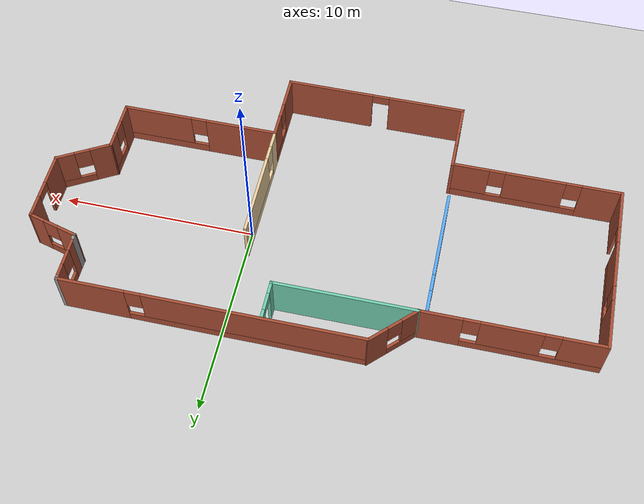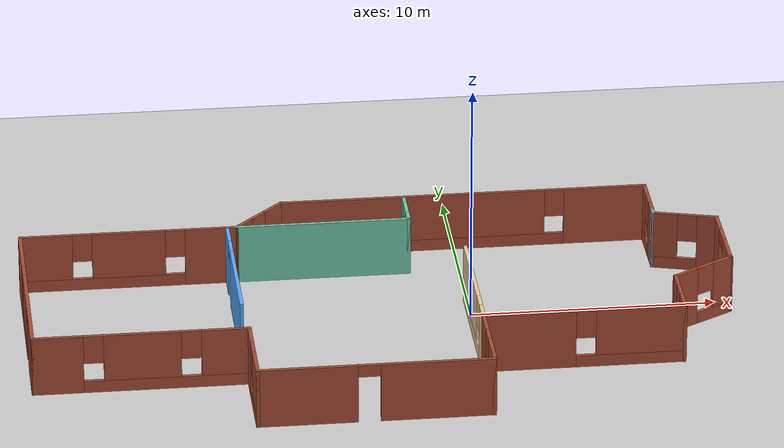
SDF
<sdf version="1.6">
 <world name="default">
  <model name="ground_plane">
   <static>1</static>
   <link name="link">
    <collision name="collision">
     <geometry><plane><normal>0 0 1</normal><size>100 100</size></plane></geometry>
     <surface><friction><ode><mu>100</mu><mu2>50</mu2></ode></friction></surface>
    </collision>
    <visual name="visual">
     <cast_shadows>0</cast_shadows>
     <geometry><plane><normal>0 0 1</normal><size>100 100</size></plane></geometry>
     <material>
      <script><uri>file://media/materials/scripts/gazebo.material</uri><name>Gazebo/Grey</name></script>
     </material>
    </visual>
   </link>
  </model>
  <model name="brickhouse">
   <pose>-3.77713 -1.2088 0 0 -0 0</pose>
   <link name="Wall_1">
    <pose>-4.41518 6.20947 0 0 0 -2.35619</pose>
    <visual name="Wall_1_Visual_0">
     <pose>-0.913281 0 1.25 0 -0 0</pose>
     <geometry><box><size>1.17344 0.15 2.5</size></box></geometry>
     <material>
      <script><uri>file://media/materials/scripts/gazebo.material</uri><name>Gazebo/Bricks</name></script>
      <ambient>1 1 1 1</ambient>
     </material>
     <meta><layer>0</layer></meta>
    </visual>
    <collision name="Wall_1_Collision_0">
     <geometry><box><size>1.17344 0.15 2.5</size></box></geometry>
     <pose>-0.913281 0 1.25 0 -0 0</pose>
    </collision>
    <visual name="Wall_1_Visual_1">
     <pose>0.586719 0 0.25 0 -0 0</pose>
     <geometry><box><size>1.82656 0.15 0.5</size></box></geometry>
     <material>
      <script><uri>file://media/materials/scripts/gazebo.material</uri><name>Gazebo/Bricks</name></script>
      <ambient>1 1 1 1</ambient>
     </material>
     <meta><layer>0</layer></meta>
    </visual>
    <collision name="Wall_1_Collision_1">
     <geometry><box><size>1.82656 0.15 0.5</size></box></geometry>
     <pose>0.586719 0 0.25 0 -0 0</pose>
    </collision>
    <visual name="Wall_1_Visual_2">
     <pose>0.986719 0 1.5 0 -0 0</pose>
     <geometry><box><size>1.02656 0.15 2</size></box></geometry>
     <material>
      <script><uri>file://media/materials/scripts/gazebo.material</uri><name>Gazebo/Bricks</name></script>
      <ambient>1 1 1 1</ambient>
     </material>
     <meta><layer>0</layer></meta>
    </visual>
    <collision name="Wall_1_Collision_2">
     <geometry><box><size>1.02656 0.15 2</size></box></geometry>
     <pose>0.986719 0 1.5 0 -0 0</pose>
    </collision>
    <visual name="Wall_1_Visual_3">
     <pose>0.073438 0 1.9 0 -0 0</pose>
     <geometry><box><size>0.8 0.15 1.2</size></box></geometry>
     <material>
      <script><uri>file://media/materials/scripts/gazebo.material</uri><name>Gazebo/Bricks</name></script>
      <ambient>1 1 1 1</ambient>
     </material>
     <meta><layer>0</layer></meta>
    </visual>
    <collision name="Wall_1_Collision_3">
     <geometry><box><size>0.8 0.15 1.2</size></box></geometry>
     <pose>0.073438 0 1.9 0 -0 0</pose>
    </collision>
   </link>
   <link name="Wall_10">
    <pose>13.0113 -0.33566 0 0 -0 0.523599</pose>
    <visual name="Wall_10_Visual_0">
     <pose>-0.906095 0 1.25 0 -0 0</pose>
     <geometry><box><size>1.18781 0.15 2.5</size></box></geometry>
     <material>
      <script><uri>file://media/materials/scripts/gazebo.material</uri><name>Gazebo/Bricks</name></script>
      <ambient>1 1 1 1</ambient>
     </material>
     <meta><layer>0</layer></meta>
    </visual>
    <collision name="Wall_10_Collision_0">
     <geometry><box><size>1.18781 0.15 2.5</size></box></geometry>
     <pose>-0.906095 0 1.25 0 -0 0</pose>
    </collision>
    <visual name="Wall_10_Visual_1">
     <pose>0.593905 0 0.25 0 -0 0</pose>
     <geometry><box><size>1.81219 0.15 0.5</size></box></geometry>
     <material>
      <script><uri>file://media/materials/scripts/gazebo.material</uri><name>Gazebo/Bricks</name></script>
      <ambient>1 1 1 1</ambient>
     </material>
     <meta><layer>0</layer></meta>
    </visual>
    <collision name="Wall_10_Collision_1">
     <geometry><box><size>1.81219 0.15 0.5</size></box></geometry>
     <pose>0.593905 0 0.25 0 -0 0</pose>
    </collision>
    <visual name="Wall_10_Visual_2">
     <pose>0.993905 0 1.5 0 -0 0</pose>
     <geometry><box><size>1.01219 0.15 2</size></box></geometry>
     <material>
      <script><uri>file://media/materials/scripts/gazebo.material</uri><name>Gazebo/Bricks</name></script>
      <ambient>1 1 1 1</ambient>
     </material>
     <meta><layer>0</layer></meta>
    </visual>
    <collision name="Wall_10_Collision_2">
     <geometry><box><size>1.01219 0.15 2</size></box></geometry>
     <pose>0.993905 0 1.5 0 -0 0</pose>
    </collision>
    <visual name="Wall_10_Visual_3">
     <pose>0.087809 0 1.9 0 -0 0</pose>
     <geometry><box><size>0.8 0.15 1.2</size></box></geometry>
     <material>
      <script><uri>file://media/materials/scripts/gazebo.material</uri><name>Gazebo/Bricks</name></script>
      <ambient>1 1 1 1</ambient>
     </material>
     <meta><layer>0</layer></meta>
    </visual>
    <collision name="Wall_10_Collision_3">
     <geometry><box><size>0.8 0.15 1.2</size></box></geometry>
     <pose>0.087809 0 1.9 0 -0 0</pose>
    </collision>
   </link>
   <link name="Wall_11">
    <pose>14.2454 2.17684 0 0 -0 1.5708</pose>
    <visual name="Wall_11_Visual_0">
     <pose>-1.04258 0 1.25 0 -0 0</pose>
     <geometry><box><size>1.66484 0.15 2.5</size></box></geometry>
     <material>
      <script><uri>file://media/materials/scripts/gazebo.material</uri><name>Gazebo/Bricks</name></script>
      <ambient>1 1 1 1</ambient>
     </material>
     <meta><layer>0</layer></meta>
    </visual>
    <collision name="Wall_11_Collision_0">
     <geometry><box><size>1.66484 0.15 2.5</size></box></geometry>
     <pose>-1.04258 0 1.25 0 -0 0</pose>
    </collision>
    <visual name="Wall_11_Visual_1">
     <pose>1.28242 0 1.25 0 -0 0</pose>
     <geometry><box><size>1.18516 0.15 2.5</size></box></geometry>
     <material>
      <script><uri>file://media/materials/scripts/gazebo.material</uri><name>Gazebo/Bricks</name></script>
      <ambient>1 1 1 1</ambient>
     </material>
     <meta><layer>0</layer></meta>
    </visual>
    <collision name="Wall_11_Collision_1">
     <geometry><box><size>1.18516 0.15 2.5</size></box></geometry>
     <pose>1.28242 0 1.25 0 -0 0</pose>
    </collision>
    <visual name="Wall_11_Visual_2">
     <pose>0.239836 0 2.25 0 -0 0</pose>
     <geometry><box><size>0.9 0.15 0.5</size></box></geometry>
     <material>
      <script><uri>file://media/materials/scripts/gazebo.material</uri><name>Gazebo/Bricks</name></script>
      <ambient>1 1 1 1</ambient>
     </material>
     <meta><layer>0</layer></meta>
    </visual>
    <collision name="Wall_11_Collision_2">
     <geometry><box><size>0.9 0.15 0.5</size></box></geometry>
     <pose>0.239836 0 2.25 0 -0 0</pose>
    </collision>
   </link>
   <link name="Wall_12">
    <pose>12.9897 4.3133 0 0 -0 2.87979</pose>
    <visual name="Wall_12_Visual_0">
     <pose>-0.936482 0 1.25 0 -0 0</pose>
     <geometry><box><size>0.877036 0.15 2.5</size></box></geometry>
     <material>
      <script><uri>file://media/materials/scripts/gazebo.material</uri><name>Gazebo/Bricks</name></script>
      <ambient>1 1 1 1</ambient>
     </material>
     <meta><layer>0</layer></meta>
    </visual>
    <collision name="Wall_12_Collision_0">
     <geometry><box><size>0.877036 0.15 2.5</size></box></geometry>
     <pose>-0.936482 0 1.25 0 -0 0</pose>
    </collision>
    <visual name="Wall_12_Visual_1">
     <pose>0.438518 0 0.25 0 -0 0</pose>
     <geometry><box><size>1.87296 0.15 0.5</size></box></geometry>
     <material>
      <script><uri>file://media/materials/scripts/gazebo.material</uri><name>Gazebo/Bricks</name></script>
      <ambient>1 1 1 1</ambient>
     </material>
     <meta><layer>0</layer></meta>
    </visual>
    <collision name="Wall_12_Collision_1">
     <geometry><box><size>1.87296 0.15 0.5</size></box></geometry>
     <pose>0.438518 0 0.25 0 -0 0</pose>
    </collision>
    <visual name="Wall_12_Visual_2">
     <pose>0.838518 0 1.5 0 -0 0</pose>
     <geometry><box><size>1.07296 0.15 2</size></box></geometry>
     <material>
      <script><uri>file://media/materials/scripts/gazebo.material</uri><name>Gazebo/Bricks</name></script>
      <ambient>1 1 1 1</ambient>
     </material>
     <meta><layer>0</layer></meta>
    </visual>
    <collision name="Wall_12_Collision_2">
     <geometry><box><size>1.07296 0.15 2</size></box></geometry>
     <pose>0.838518 0 1.5 0 -0 0</pose>
    </collision>
    <visual name="Wall_12_Visual_3">
     <pose>-0.097964 0 1.9 0 -0 0</pose>
     <geometry><box><size>0.8 0.15 1.2</size></box></geometry>
     <material>
      <script><uri>file://media/materials/scripts/gazebo.material</uri><name>Gazebo/Bricks</name></script>
      <ambient>1 1 1 1</ambient>
     </material>
     <meta><layer>0</layer></meta>
    </visual>
    <collision name="Wall_12_Collision_3">
     <geometry><box><size>0.8 0.15 1.2</size></box></geometry>
     <pose>-0.097964 0 1.9 0 -0 0</pose>
    </collision>
   </link>
   <link name="Wall_13">
    <collision name="Wall_13_Collision">
     <geometry><box><size>0.5 0.15 2.5</size></box></geometry>
     <pose>0 0 1.25 0 -0 0</pose>
    </collision>
    <visual name="Wall_13_Visual">
     <pose>0 0 1.25 0 -0 0</pose>
     <geometry><box><size>0.5 0.15 2.5</size></box></geometry>
     <material>
      <script><uri>file://media/materials/scripts/gazebo.material</uri><name>Gazebo/Grey</name></script>
      <ambient>1 1 1 1</ambient>
     </material>
     <meta><layer>0</layer></meta>
    </visual>
    <pose>11.734 4.82477 0 0 -0 1.5708</pose>
   </link>
   <link name="Wall_14">
    <pose>11.734 6.04977 0 0 -0 1.5708</pose>
    <visual name="Wall_14_Visual_0">
     <pose>-0.797565 0 1.25 0 -0 0</pose>
     <geometry><box><size>0.65487 0.15 2.5</size></box></geometry>
     <material>
      <script><uri>file://media/materials/scripts/gazebo.material</uri><name>Gazebo/Bricks</name></script>
      <ambient>1 1 1 1</ambient>
     </material>
     <meta><layer>0</layer></meta>
    </visual>
    <collision name="Wall_14_Collision_0">
     <geometry><box><size>0.65487 0.15 2.5</size></box></geometry>
     <pose>-0.797565 0 1.25 0 -0 0</pose>
    </collision>
    <visual name="Wall_14_Visual_1">
     <pose>0.327435 0 0.25 0 -0 0</pose>
     <geometry><box><size>1.59513 0.15 0.5</size></box></geometry>
     <material>
      <script><uri>file://media/materials/scripts/gazebo.material</uri><name>Gazebo/Bricks</name></script>
      <ambient>1 1 1 1</ambient>
     </material>
     <meta><layer>0</layer></meta>
    </visual>
    <collision name="Wall_14_Collision_1">
     <geometry><box><size>1.59513 0.15 0.5</size></box></geometry>
     <pose>0.327435 0 0.25 0 -0 0</pose>
    </collision>
    <visual name="Wall_14_Visual_2">
     <pose>0.727435 0 1.5 0 -0 0</pose>
     <geometry><box><size>0.79513 0.15 2</size></box></geometry>
     <material>
      <script><uri>file://media/materials/scripts/gazebo.material</uri><name>Gazebo/Bricks</name></script>
      <ambient>1 1 1 1</ambient>
     </material>
     <meta><layer>0</layer></meta>
    </visual>
    <collision name="Wall_14_Collision_2">
     <geometry><box><size>0.79513 0.15 2</size></box></geometry>
     <pose>0.727435 0 1.5 0 -0 0</pose>
    </collision>
    <visual name="Wall_14_Visual_3">
     <pose>-0.07013 0 1.9 0 -0 0</pose>
     <geometry><box><size>0.8 0.15 1.2</size></box></geometry>
     <material>
      <script><uri>file://media/materials/scripts/gazebo.material</uri><name>Gazebo/Bricks</name></script>
      <ambient>1 1 1 1</ambient>
     </material>
     <meta><layer>0</layer></meta>
    </visual>
    <collision name="Wall_14_Collision_3">
     <geometry><box><size>0.8 0.15 1.2</size></box></geometry>
     <pose>-0.07013 0 1.9 0 -0 0</pose>
    </collision>
   </link>
   <link name="Wall_15">
    <collision name="Wall_15_Collision">
     <geometry><box><size>0.25 0.15 2.5</size></box></geometry>
     <pose>0 0 1.25 0 -0 0</pose>
    </collision>
    <visual name="Wall_15_Visual">
     <pose>0 0 1.25 0 -0 0</pose>
     <geometry><box><size>0.25 0.15 2.5</size></box></geometry>
     <material>
      <script><uri>file://media/materials/scripts/gazebo.material</uri><name>Gazebo/Grey</name></script>
      <ambient>1 1 1 1</ambient>
     </material>
     <meta><layer>0</layer></meta>
    </visual>
    <pose>11.734 7.14977 0 0 -0 1.5708</pose>
   </link>
   <link name="Wall_16">
    <pose>4.18395 7.19977 0 0 -0 3.14159</pose>
    <visual name="Wall_16_Visual_0">
     <pose>-5.89816 0 1.25 0 -0 0</pose>
     <geometry><box><size>3.45369 0.15 2.5</size></box></geometry>
     <material>
      <script><uri>file://media/materials/scripts/gazebo.material</uri><name>Gazebo/Bricks</name></script>
      <ambient>1 1 1 1</ambient>
     </material>
     <meta><layer>0</layer></meta>
    </visual>
    <collision name="Wall_16_Collision_0">
     <geometry><box><size>3.45369 0.15 2.5</size></box></geometry>
     <pose>-5.89816 0 1.25 0 -0 0</pose>
    </collision>
    <visual name="Wall_16_Visual_1">
     <pose>1.72684 0 0.25 0 -0 0</pose>
     <geometry><box><size>11.7963 0.15 0.5</size></box></geometry>
     <material>
      <script><uri>file://media/materials/scripts/gazebo.material</uri><name>Gazebo/Bricks</name></script>
      <ambient>1 1 1 1</ambient>
     </material>
     <meta><layer>0</layer></meta>
    </visual>
    <collision name="Wall_16_Collision_1">
     <geometry><box><size>11.7963 0.15 0.5</size></box></geometry>
     <pose>1.72684 0 0.25 0 -0 0</pose>
    </collision>
    <visual name="Wall_16_Visual_2">
     <pose>2.12684 0 1.5 0 -0 0</pose>
     <geometry><box><size>10.9963 0.15 2</size></box></geometry>
     <material>
      <script><uri>file://media/materials/scripts/gazebo.material</uri><name>Gazebo/Bricks</name></script>
      <ambient>1 1 1 1</ambient>
     </material>
     <meta><layer>0</layer></meta>
    </visual>
    <collision name="Wall_16_Collision_2">
     <geometry><box><size>10.9963 0.15 2</size></box></geometry>
     <pose>2.12684 0 1.5 0 -0 0</pose>
    </collision>
    <visual name="Wall_16_Visual_3">
     <pose>-3.77131 0 1.9 0 -0 0</pose>
     <geometry><box><size>0.8 0.15 1.2</size></box></geometry>
     <material>
      <script><uri>file://media/materials/scripts/gazebo.material</uri><name>Gazebo/Bricks</name></script>
      <ambient>1 1 1 1</ambient>
     </material>
     <meta><layer>0</layer></meta>
    </visual>
    <collision name="Wall_16_Collision_3">
     <geometry><box><size>0.8 0.15 1.2</size></box></geometry>
     <pose>-3.77131 0 1.9 0 -0 0</pose>
    </collision>
   </link>
   <link name="Wall_18">
    <pose>-5.79963 1.75078 0 0 -0 1.5708</pose>
    <visual name="Wall_18_Visual_0">
     <pose>-1.01174 0 1.25 0 -0 0</pose>
     <geometry><box><size>4.72653 0.15 2.5</size></box></geometry>
     <material>
      <script><uri>file://media/materials/scripts/gazebo.material</uri><name>Gazebo/Grey</name></script>
      <ambient>0.333333 0.666667 1 1</ambient>
     </material>
     <meta><layer>0</layer></meta>
    </visual>
    <collision name="Wall_18_Collision_0">
     <geometry><box><size>4.72653 0.15 2.5</size></box></geometry>
     <pose>-1.01174 0 1.25 0 -0 0</pose>
    </collision>
    <visual name="Wall_18_Visual_1">
     <pose>2.81326 0 1.25 0 -0 0</pose>
     <geometry><box><size>1.12347 0.15 2.5</size></box></geometry>
     <material>
      <script><uri>file://media/materials/scripts/gazebo.material</uri><name>Gazebo/Grey</name></script>
      <ambient>0.333333 0.666667 1 1</ambient>
     </material>
     <meta><layer>0</layer></meta>
    </visual>
    <collision name="Wall_18_Collision_1">
     <geometry><box><size>1.12347 0.15 2.5</size></box></geometry>
     <pose>2.81326 0 1.25 0 -0 0</pose>
    </collision>
    <visual name="Wall_18_Visual_2">
     <pose>1.80153 0 2.25 0 -0 0</pose>
     <geometry><box><size>0.9 0.15 0.5</size></box></geometry>
     <material>
      <script><uri>file://media/materials/scripts/gazebo.material</uri><name>Gazebo/Grey</name></script>
      <ambient>0.333333 0.666667 1 1</ambient>
     </material>
     <meta><layer>0</layer></meta>
    </visual>
    <collision name="Wall_18_Collision_2">
     <geometry><box><size>0.9 0.15 0.5</size></box></geometry>
     <pose>1.80153 0 2.25 0 -0 0</pose>
    </collision>
   </link>
   <link name="Wall_2">
    <pose>-9.84781 5.20184 0 0 -0 3.14159</pose>
    <visual name="Wall_2_Visual_0">
     <pose>-3.40202 0 1.25 0 -0 0</pose>
     <geometry><box><size>2.19596 0.15 2.5</size></box></geometry>
     <material>
      <script><uri>file://media/materials/scripts/gazebo.material</uri><name>Gazebo/Bricks</name></script>
      <ambient>1 1 1 1</ambient>
     </material>
     <meta><layer>0</layer></meta>
    </visual>
    <collision name="Wall_2_Collision_0">
     <geometry><box><size>2.19596 0.15 2.5</size></box></geometry>
     <pose>-3.40202 0 1.25 0 -0 0</pose>
    </collision>
    <visual name="Wall_2_Visual_1">
     <pose>1.09798 0 0.25 0 -0 0</pose>
     <geometry><box><size>6.80404 0.15 0.5</size></box></geometry>
     <material>
      <script><uri>file://media/materials/scripts/gazebo.material</uri><name>Gazebo/Bricks</name></script>
      <ambient>1 1 1 1</ambient>
     </material>
     <meta><layer>0</layer></meta>
    </visual>
    <collision name="Wall_2_Collision_1">
     <geometry><box><size>6.80404 0.15 0.5</size></box></geometry>
     <pose>1.09798 0 0.25 0 -0 0</pose>
    </collision>
    <visual name="Wall_2_Visual_2">
     <pose>-0.002627 0 1.5 0 -0 0</pose>
     <geometry><box><size>3.00283 0.15 2</size></box></geometry>
     <material>
      <script><uri>file://media/materials/scripts/gazebo.material</uri><name>Gazebo/Bricks</name></script>
      <ambient>1 1 1 1</ambient>
     </material>
     <meta><layer>0</layer></meta>
    </visual>
    <collision name="Wall_2_Collision_2">
     <geometry><box><size>3.00283 0.15 2</size></box></geometry>
     <pose>-0.002627 0 1.5 0 -0 0</pose>
    </collision>
    <visual name="Wall_2_Visual_3">
     <pose>3.39939 0 1.5 0 -0 0</pose>
     <geometry><box><size>2.20121 0.15 2</size></box></geometry>
     <material>
      <script><uri>file://media/materials/scripts/gazebo.material</uri><name>Gazebo/Bricks</name></script>
      <ambient>1 1 1 1</ambient>
     </material>
     <meta><layer>0</layer></meta>
    </visual>
    <collision name="Wall_2_Collision_3">
     <geometry><box><size>2.20121 0.15 2</size></box></geometry>
     <pose>3.39939 0 1.5 0 -0 0</pose>
    </collision>
    <visual name="Wall_2_Visual_4">
     <pose>-1.90404 0 1.9 0 -0 0</pose>
     <geometry><box><size>0.8 0.15 1.2</size></box></geometry>
     <material>
      <script><uri>file://media/materials/scripts/gazebo.material</uri><name>Gazebo/Bricks</name></script>
      <ambient>1 1 1 1</ambient>
     </material>
     <meta><layer>0</layer></meta>
    </visual>
    <collision name="Wall_2_Collision_4">
     <geometry><box><size>0.8 0.15 1.2</size></box></geometry>
     <pose>-1.90404 0 1.9 0 -0 0</pose>
    </collision>
    <visual name="Wall_2_Visual_5">
     <pose>1.89879 0 1.9 0 -0 0</pose>
     <geometry><box><size>0.8 0.15 1.2</size></box></geometry>
     <material>
      <script><uri>file://media/materials/scripts/gazebo.material</uri><name>Gazebo/Bricks</name></script>
      <ambient>1 1 1 1</ambient>
     </material>
     <meta><layer>0</layer></meta>
    </visual>
    <collision name="Wall_2_Collision_5">
     <geometry><box><size>0.8 0.15 1.2</size></box></geometry>
     <pose>1.89879 0 1.9 0 -0 0</pose>
    </collision>
   </link>
   <link name="Wall_21">
    <collision name="Wall_21_Collision">
     <geometry><box><size>7.25 0.15 2.5</size></box></geometry>
     <pose>0 0 1.25 0 -0 0</pose>
    </collision>
    <visual name="Wall_21_Visual">
     <pose>0 0 1.25 0 -0 0</pose>
     <geometry><box><size>7.25 0.15 2.5</size></box></geometry>
     <material>
      <script><uri>file://media/materials/scripts/gazebo.material</uri><name>Gazebo/Grey</name></script>
      <ambient>0.435294 0.796078 0.67451 1</ambient>
     </material>
     <meta><layer>0</layer></meta>
    </visual>
    <pose>-1.87281 5.20184 0 0 -0 0</pose>
   </link>
   <link name="Wall_22">
    <pose>1.67719 6.12684 0 0 -0 1.5708</pose>
    <visual name="Wall_22_Visual_0">
     <pose>-0.657006 0 1.25 0 -0 0</pose>
     <geometry><box><size>0.685988 0.15 2.5</size></box></geometry>
     <material>
      <script><uri>file://media/materials/scripts/gazebo.material</uri><name>Gazebo/Grey</name></script>
      <ambient>0.435294 0.796078 0.67451 1</ambient>
     </material>
     <meta><layer>0</layer></meta>
    </visual>
    <collision name="Wall_22_Collision_0">
     <geometry><box><size>0.685988 0.15 2.5</size></box></geometry>
     <pose>-0.657006 0 1.25 0 -0 0</pose>
    </collision>
    <visual name="Wall_22_Visual_1">
     <pose>0.792994 0 1.25 0 -0 0</pose>
     <geometry><box><size>0.414012 0.15 2.5</size></box></geometry>
     <material>
      <script><uri>file://media/materials/scripts/gazebo.material</uri><name>Gazebo/Grey</name></script>
      <ambient>0.435294 0.796078 0.67451 1</ambient>
     </material>
     <meta><layer>0</layer></meta>
    </visual>
    <collision name="Wall_22_Collision_1">
     <geometry><box><size>0.414012 0.15 2.5</size></box></geometry>
     <pose>0.792994 0 1.25 0 -0 0</pose>
    </collision>
    <visual name="Wall_22_Visual_2">
     <pose>0.135988 0 2.25 0 -0 0</pose>
     <geometry><box><size>0.9 0.15 0.5</size></box></geometry>
     <material>
      <script><uri>file://media/materials/scripts/gazebo.material</uri><name>Gazebo/Grey</name></script>
      <ambient>0.435294 0.796078 0.67451 1</ambient>
     </material>
     <meta><layer>0</layer></meta>
    </visual>
    <collision name="Wall_22_Collision_2">
     <geometry><box><size>0.9 0.15 0.5</size></box></geometry>
     <pose>0.135988 0 2.25 0 -0 0</pose>
    </collision>
   </link>
   <link name="Wall_26">
    <pose>3.67719 -0.59816 0 0 -0 1.5708</pose>
    <visual name="Wall_26_Visual_0">
     <pose>-2.6203 0 1.25 0 -0 0</pose>
     <geometry><box><size>1.00941 0.15 2.5</size></box></geometry>
     <material>
      <script><uri>file://media/materials/scripts/gazebo.material</uri><name>Gazebo/Grey</name></script>
      <ambient>0.921569 0.807843 0.615686 1</ambient>
     </material>
     <meta><layer>0</layer></meta>
    </visual>
    <collision name="Wall_26_Collision_0">
     <geometry><box><size>1.00941 0.15 2.5</size></box></geometry>
     <pose>-2.6203 0 1.25 0 -0 0</pose>
    </collision>
    <visual name="Wall_26_Visual_1">
     <pose>0.504703 0 0.25 0 -0 0</pose>
     <geometry><box><size>5.24059 0.15 0.5</size></box></geometry>
     <material>
      <script><uri>file://media/materials/scripts/gazebo.material</uri><name>Gazebo/Grey</name></script>
      <ambient>0.921569 0.807843 0.615686 1</ambient>
     </material>
     <meta><layer>0</layer></meta>
    </visual>
    <collision name="Wall_26_Collision_1">
     <geometry><box><size>5.24059 0.15 0.5</size></box></geometry>
     <pose>0.504703 0 0.25 0 -0 0</pose>
    </collision>
    <visual name="Wall_26_Visual_2">
     <pose>0.904703 0 1.5 0 -0 0</pose>
     <geometry><box><size>4.44059 0.15 2</size></box></geometry>
     <material>
      <script><uri>file://media/materials/scripts/gazebo.material</uri><name>Gazebo/Grey</name></script>
      <ambient>0.921569 0.807843 0.615686 1</ambient>
     </material>
     <meta><layer>0</layer></meta>
    </visual>
    <collision name="Wall_26_Collision_2">
     <geometry><box><size>4.44059 0.15 2</size></box></geometry>
     <pose>0.904703 0 1.5 0 -0 0</pose>
    </collision>
    <visual name="Wall_26_Visual_3">
     <pose>-1.71559 0 1.9 0 -0 0</pose>
     <geometry><box><size>0.8 0.15 1.2</size></box></geometry>
     <material>
      <script><uri>file://media/materials/scripts/gazebo.material</uri><name>Gazebo/Grey</name></script>
      <ambient>0.921569 0.807843 0.615686 1</ambient>
     </material>
     <meta><layer>0</layer></meta>
    </visual>
    <collision name="Wall_26_Collision_3">
     <geometry><box><size>0.8 0.15 1.2</size></box></geometry>
     <pose>-1.71559 0 1.9 0 -0 0</pose>
    </collision>
   </link>
   <link name="Wall_3">
    <pose>-14.2728 0.77684 0 0 0 -1.5708</pose>
    <visual name="Wall_3_Visual_0">
     <pose>-3.19044 0 1.25 0 -0 0</pose>
     <geometry><box><size>2.61911 0.15 2.5</size></box></geometry>
     <material>
      <script><uri>file://media/materials/scripts/gazebo.material</uri><name>Gazebo/Bricks</name></script>
      <ambient>1 1 1 1</ambient>
     </material>
     <meta><layer>0</layer></meta>
    </visual>
    <collision name="Wall_3_Collision_0">
     <geometry><box><size>2.61911 0.15 2.5</size></box></geometry>
     <pose>-3.19044 0 1.25 0 -0 0</pose>
    </collision>
    <visual name="Wall_3_Visual_1">
     <pose>3.42825 0 1.25 0 -0 0</pose>
     <geometry><box><size>2.14351 0.15 2.5</size></box></geometry>
     <material>
      <script><uri>file://media/materials/scripts/gazebo.material</uri><name>Gazebo/Bricks</name></script>
      <ambient>1 1 1 1</ambient>
     </material>
     <meta><layer>0</layer></meta>
    </visual>
    <collision name="Wall_3_Collision_1">
     <geometry><box><size>2.14351 0.15 2.5</size></box></geometry>
     <pose>3.42825 0 1.25 0 -0 0</pose>
    </collision>
    <visual name="Wall_3_Visual_2">
     <pose>-0.212197 0 0.25 0 -0 0</pose>
     <geometry><box><size>3.33738 0.15 0.5</size></box></geometry>
     <material>
      <script><uri>file://media/materials/scripts/gazebo.material</uri><name>Gazebo/Bricks</name></script>
      <ambient>1 1 1 1</ambient>
     </material>
     <meta><layer>0</layer></meta>
    </visual>
    <collision name="Wall_3_Collision_2">
     <geometry><box><size>3.33738 0.15 0.5</size></box></geometry>
     <pose>-0.212197 0 0.25 0 -0 0</pose>
    </collision>
    <visual name="Wall_3_Visual_3">
     <pose>0.187803 0 1.5 0 -0 0</pose>
     <geometry><box><size>2.53738 0.15 2</size></box></geometry>
     <material>
      <script><uri>file://media/materials/scripts/gazebo.material</uri><name>Gazebo/Bricks</name></script>
      <ambient>1 1 1 1</ambient>
     </material>
     <meta><layer>0</layer></meta>
    </visual>
    <collision name="Wall_3_Collision_3">
     <geometry><box><size>2.53738 0.15 2</size></box></geometry>
     <pose>0.187803 0 1.5 0 -0 0</pose>
    </collision>
    <visual name="Wall_3_Visual_4">
     <pose>-1.48089 0 1.9 0 -0 0</pose>
     <geometry><box><size>0.8 0.15 1.2</size></box></geometry>
     <material>
      <script><uri>file://media/materials/scripts/gazebo.material</uri><name>Gazebo/Bricks</name></script>
      <ambient>1 1 1 1</ambient>
     </material>
     <meta><layer>0</layer></meta>
    </visual>
    <collision name="Wall_3_Collision_4">
     <geometry><box><size>0.8 0.15 1.2</size></box></geometry>
     <pose>-1.48089 0 1.9 0 -0 0</pose>
    </collision>
    <visual name="Wall_3_Visual_5">
     <pose>1.90649 0 2.25 0 -0 0</pose>
     <geometry><box><size>0.9 0.15 0.5</size></box></geometry>
     <material>
      <script><uri>file://media/materials/scripts/gazebo.material</uri><name>Gazebo/Bricks</name></script>
      <ambient>1 1 1 1</ambient>
     </material>
     <meta><layer>0</layer></meta>
    </visual>
    <collision name="Wall_3_Collision_5">
     <geometry><box><size>0.9 0.15 0.5</size></box></geometry>
     <pose>1.90649 0 2.25 0 -0 0</pose>
    </collision>
   </link>
   <link name="Wall_4">
    <pose>-9.97281 -3.64816 0 0 -0 0</pose>
    <visual name="Wall_4_Visual_0">
     <pose>-3.33508 0 1.25 0 -0 0</pose>
     <geometry><box><size>2.07985 0.15 2.5</size></box></geometry>
     <material>
      <script><uri>file://media/materials/scripts/gazebo.material</uri><name>Gazebo/Bricks</name></script>
      <ambient>1 1 1 1</ambient>
     </material>
     <meta><layer>0</layer></meta>
    </visual>
    <collision name="Wall_4_Collision_0">
     <geometry><box><size>2.07985 0.15 2.5</size></box></geometry>
     <pose>-3.33508 0 1.25 0 -0 0</pose>
    </collision>
    <visual name="Wall_4_Visual_1">
     <pose>1.03992 0 0.25 0 -0 0</pose>
     <geometry><box><size>6.67015 0.15 0.5</size></box></geometry>
     <material>
      <script><uri>file://media/materials/scripts/gazebo.material</uri><name>Gazebo/Bricks</name></script>
      <ambient>1 1 1 1</ambient>
     </material>
     <meta><layer>0</layer></meta>
    </visual>
    <collision name="Wall_4_Collision_1">
     <geometry><box><size>6.67015 0.15 0.5</size></box></geometry>
     <pose>1.03992 0 0.25 0 -0 0</pose>
    </collision>
    <visual name="Wall_4_Visual_2">
     <pose>0.046716 0 1.5 0 -0 0</pose>
     <geometry><box><size>3.08374 0.15 2</size></box></geometry>
     <material>
      <script><uri>file://media/materials/scripts/gazebo.material</uri><name>Gazebo/Bricks</name></script>
      <ambient>1 1 1 1</ambient>
     </material>
     <meta><layer>0</layer></meta>
    </visual>
    <collision name="Wall_4_Collision_2">
     <geometry><box><size>3.08374 0.15 2</size></box></geometry>
     <pose>0.046716 0 1.5 0 -0 0</pose>
    </collision>
    <visual name="Wall_4_Visual_3">
     <pose>3.38179 0 1.5 0 -0 0</pose>
     <geometry><box><size>1.98642 0.15 2</size></box></geometry>
     <material>
      <script><uri>file://media/materials/scripts/gazebo.material</uri><name>Gazebo/Bricks</name></script>
      <ambient>1 1 1 1</ambient>
     </material>
     <meta><layer>0</layer></meta>
    </visual>
    <collision name="Wall_4_Collision_3">
     <geometry><box><size>1.98642 0.15 2</size></box></geometry>
     <pose>3.38179 0 1.5 0 -0 0</pose>
    </collision>
    <visual name="Wall_4_Visual_4">
     <pose>-1.89515 0 1.9 0 -0 0</pose>
     <geometry><box><size>0.8 0.15 1.2</size></box></geometry>
     <material>
      <script><uri>file://media/materials/scripts/gazebo.material</uri><name>Gazebo/Bricks</name></script>
      <ambient>1 1 1 1</ambient>
     </material>
     <meta><layer>0</layer></meta>
    </visual>
    <collision name="Wall_4_Collision_4">
     <geometry><box><size>0.8 0.15 1.2</size></box></geometry>
     <pose>-1.89515 0 1.9 0 -0 0</pose>
    </collision>
    <visual name="Wall_4_Visual_5">
     <pose>1.98858 0 1.9 0 -0 0</pose>
     <geometry><box><size>0.8 0.15 1.2</size></box></geometry>
     <material>
      <script><uri>file://media/materials/scripts/gazebo.material</uri><name>Gazebo/Bricks</name></script>
      <ambient>1 1 1 1</ambient>
     </material>
     <meta><layer>0</layer></meta>
    </visual>
    <collision name="Wall_4_Collision_5">
     <geometry><box><size>0.8 0.15 1.2</size></box></geometry>
     <pose>1.98858 0 1.9 0 -0 0</pose>
    </collision>
   </link>
   <link name="Wall_5">
    <pose>-5.67281 -5.44816 0 0 0 -1.5708</pose>
    <visual name="Wall_5_Visual_0">
     <pose>-1.22808 0 1.25 0 -0 0</pose>
     <geometry><box><size>1.29385 0.15 2.5</size></box></geometry>
     <material>
      <script><uri>file://media/materials/scripts/gazebo.material</uri><name>Gazebo/Bricks</name></script>
      <ambient>1 1 1 1</ambient>
     </material>
     <meta><layer>0</layer></meta>
    </visual>
    <collision name="Wall_5_Collision_0">
     <geometry><box><size>1.29385 0.15 2.5</size></box></geometry>
     <pose>-1.22808 0 1.25 0 -0 0</pose>
    </collision>
    <visual name="Wall_5_Visual_1">
     <pose>0.646925 0 0.25 0 -0 0</pose>
     <geometry><box><size>2.45615 0.15 0.5</size></box></geometry>
     <material>
      <script><uri>file://media/materials/scripts/gazebo.material</uri><name>Gazebo/Bricks</name></script>
      <ambient>1 1 1 1</ambient>
     </material>
     <meta><layer>0</layer></meta>
    </visual>
    <collision name="Wall_5_Collision_1">
     <geometry><box><size>2.45615 0.15 0.5</size></box></geometry>
     <pose>0.646925 0 0.25 0 -0 0</pose>
    </collision>
    <visual name="Wall_5_Visual_2">
     <pose>1.04693 0 1.5 0 -0 0</pose>
     <geometry><box><size>1.65615 0.15 2</size></box></geometry>
     <material>
      <script><uri>file://media/materials/scripts/gazebo.material</uri><name>Gazebo/Bricks</name></script>
      <ambient>1 1 1 1</ambient>
     </material>
     <meta><layer>0</layer></meta>
    </visual>
    <collision name="Wall_5_Collision_2">
     <geometry><box><size>1.65615 0.15 2</size></box></geometry>
     <pose>1.04693 0 1.5 0 -0 0</pose>
    </collision>
    <visual name="Wall_5_Visual_3">
     <pose>-0.181149 0 1.9 0 -0 0</pose>
     <geometry><box><size>0.8 0.15 1.2</size></box></geometry>
     <material>
      <script><uri>file://media/materials/scripts/gazebo.material</uri><name>Gazebo/Bricks</name></script>
      <ambient>1 1 1 1</ambient>
     </material>
     <meta><layer>0</layer></meta>
    </visual>
    <collision name="Wall_5_Collision_3">
     <geometry><box><size>0.8 0.15 1.2</size></box></geometry>
     <pose>-0.181149 0 1.9 0 -0 0</pose>
    </collision>
   </link>
   <link name="Wall_6">
    <pose>-0.997812 -7.24816 0 0 -0 0</pose>
    <visual name="Wall_6_Visual_0">
     <pose>-2.73801 0 1.25 0 -0 0</pose>
     <geometry><box><size>4.02398 0.15 2.5</size></box></geometry>
     <material>
      <script><uri>file://media/materials/scripts/gazebo.material</uri><name>Gazebo/Bricks</name></script>
      <ambient>1 1 1 1</ambient>
     </material>
     <meta><layer>0</layer></meta>
    </visual>
    <collision name="Wall_6_Collision_0">
     <geometry><box><size>4.02398 0.15 2.5</size></box></geometry>
     <pose>-2.73801 0 1.25 0 -0 0</pose>
    </collision>
    <visual name="Wall_6_Visual_1">
     <pose>2.46199 0 1.25 0 -0 0</pose>
     <geometry><box><size>4.57602 0.15 2.5</size></box></geometry>
     <material>
      <script><uri>file://media/materials/scripts/gazebo.material</uri><name>Gazebo/Bricks</name></script>
      <ambient>1 1 1 1</ambient>
     </material>
     <meta><layer>0</layer></meta>
    </visual>
    <collision name="Wall_6_Collision_1">
     <geometry><box><size>4.57602 0.15 2.5</size></box></geometry>
     <pose>2.46199 0 1.25 0 -0 0</pose>
    </collision>
    <visual name="Wall_6_Visual_2">
     <pose>-0.276023 0 2.25 0 -0 0</pose>
     <geometry><box><size>0.9 0.15 0.5</size></box></geometry>
     <material>
      <script><uri>file://media/materials/scripts/gazebo.material</uri><name>Gazebo/Bricks</name></script>
      <ambient>1 1 1 1</ambient>
     </material>
     <meta><layer>0</layer></meta>
    </visual>
    <collision name="Wall_6_Collision_2">
     <geometry><box><size>0.9 0.15 0.5</size></box></geometry>
     <pose>-0.276023 0 2.25 0 -0 0</pose>
    </collision>
   </link>
   <link name="Wall_7">
    <pose>3.67719 -5.44816 0 0 -0 1.5708</pose>
    <visual name="Wall_7_Visual_0">
     <pose>-1.00647 0 1.25 0 -0 0</pose>
     <geometry><box><size>1.73706 0.15 2.5</size></box></geometry>
     <material>
      <script><uri>file://media/materials/scripts/gazebo.material</uri><name>Gazebo/Bricks</name></script>
      <ambient>1 1 1 1</ambient>
     </material>
     <meta><layer>0</layer></meta>
    </visual>
    <collision name="Wall_7_Collision_0">
     <geometry><box><size>1.73706 0.15 2.5</size></box></geometry>
     <pose>-1.00647 0 1.25 0 -0 0</pose>
    </collision>
    <visual name="Wall_7_Visual_1">
     <pose>0.86853 0 0.25 0 -0 0</pose>
     <geometry><box><size>2.01294 0.15 0.5</size></box></geometry>
     <material>
      <script><uri>file://media/materials/scripts/gazebo.material</uri><name>Gazebo/Bricks</name></script>
      <ambient>1 1 1 1</ambient>
     </material>
     <meta><layer>0</layer></meta>
    </visual>
    <collision name="Wall_7_Collision_1">
     <geometry><box><size>2.01294 0.15 0.5</size></box></geometry>
     <pose>0.86853 0 0.25 0 -0 0</pose>
    </collision>
    <visual name="Wall_7_Visual_2">
     <pose>1.26853 0 1.5 0 -0 0</pose>
     <geometry><box><size>1.21294 0.15 2</size></box></geometry>
     <material>
      <script><uri>file://media/materials/scripts/gazebo.material</uri><name>Gazebo/Bricks</name></script>
      <ambient>1 1 1 1</ambient>
     </material>
     <meta><layer>0</layer></meta>
    </visual>
    <collision name="Wall_7_Collision_2">
     <geometry><box><size>1.21294 0.15 2</size></box></geometry>
     <pose>1.26853 0 1.5 0 -0 0</pose>
    </collision>
    <visual name="Wall_7_Visual_3">
     <pose>0.26206 0 1.9 0 -0 0</pose>
     <geometry><box><size>0.8 0.15 1.2</size></box></geometry>
     <material>
      <script><uri>file://media/materials/scripts/gazebo.material</uri><name>Gazebo/Bricks</name></script>
      <ambient>1 1 1 1</ambient>
     </material>
     <meta><layer>0</layer></meta>
    </visual>
    <collision name="Wall_7_Collision_3">
     <geometry><box><size>0.8 0.15 1.2</size></box></geometry>
     <pose>0.26206 0 1.9 0 -0 0</pose>
    </collision>
   </link>
   <link name="Wall_8">
    <pose>7.72719 -3.64816 0 0 -0 0</pose>
    <visual name="Wall_8_Visual_0">
     <pose>-2.22937 0 1.25 0 -0 0</pose>
     <geometry><box><size>3.79126 0.15 2.5</size></box></geometry>
     <material>
      <script><uri>file://media/materials/scripts/gazebo.material</uri><name>Gazebo/Bricks</name></script>
      <ambient>1 1 1 1</ambient>
     </material>
     <meta><layer>0</layer></meta>
    </visual>
    <collision name="Wall_8_Collision_0">
     <geometry><box><size>3.79126 0.15 2.5</size></box></geometry>
     <pose>-2.22937 0 1.25 0 -0 0</pose>
    </collision>
    <visual name="Wall_8_Visual_1">
     <pose>1.89563 0 0.25 0 -0 0</pose>
     <geometry><box><size>4.45874 0.15 0.5</size></box></geometry>
     <material>
      <script><uri>file://media/materials/scripts/gazebo.material</uri><name>Gazebo/Bricks</name></script>
      <ambient>1 1 1 1</ambient>
     </material>
     <meta><layer>0</layer></meta>
    </visual>
    <collision name="Wall_8_Collision_1">
     <geometry><box><size>4.45874 0.15 0.5</size></box></geometry>
     <pose>1.89563 0 0.25 0 -0 0</pose>
    </collision>
    <visual name="Wall_8_Visual_2">
     <pose>2.29563 0 1.5 0 -0 0</pose>
     <geometry><box><size>3.65874 0.15 2</size></box></geometry>
     <material>
      <script><uri>file://media/materials/scripts/gazebo.material</uri><name>Gazebo/Bricks</name></script>
      <ambient>1 1 1 1</ambient>
     </material>
     <meta><layer>0</layer></meta>
    </visual>
    <collision name="Wall_8_Collision_2">
     <geometry><box><size>3.65874 0.15 2</size></box></geometry>
     <pose>2.29563 0 1.5 0 -0 0</pose>
    </collision>
    <visual name="Wall_8_Visual_3">
     <pose>0.066258 0 1.9 0 -0 0</pose>
     <geometry><box><size>0.8 0.15 1.2</size></box></geometry>
     <material>
      <script><uri>file://media/materials/scripts/gazebo.material</uri><name>Gazebo/Bricks</name></script>
      <ambient>1 1 1 1</ambient>
     </material>
     <meta><layer>0</layer></meta>
    </visual>
    <collision name="Wall_8_Collision_3">
     <geometry><box><size>0.8 0.15 1.2</size></box></geometry>
     <pose>0.066258 0 1.9 0 -0 0</pose>
    </collision>
   </link>
   <link name="Wall_9">
    <pose>11.7772 -2.34816 0 0 -0 1.5708</pose>
    <visual name="Wall_9_Visual_0">
     <pose>-0.829841 0 1.25 0 -0 0</pose>
     <geometry><box><size>1.09032 0.15 2.5</size></box></geometry>
     <material>
      <script><uri>file://media/materials/scripts/gazebo.material</uri><name>Gazebo/Bricks</name></script>
      <ambient>1 1 1 1</ambient>
     </material>
     <meta><layer>0</layer></meta>
    </visual>
    <collision name="Wall_9_Collision_0">
     <geometry><box><size>1.09032 0.15 2.5</size></box></geometry>
     <pose>-0.829841 0 1.25 0 -0 0</pose>
    </collision>
    <visual name="Wall_9_Visual_1">
     <pose>0.545159 0 0.25 0 -0 0</pose>
     <geometry><box><size>1.65968 0.15 0.5</size></box></geometry>
     <material>
      <script><uri>file://media/materials/scripts/gazebo.material</uri><name>Gazebo/Bricks</name></script>
      <ambient>1 1 1 1</ambient>
     </material>
     <meta><layer>0</layer></meta>
    </visual>
    <collision name="Wall_9_Collision_1">
     <geometry><box><size>1.65968 0.15 0.5</size></box></geometry>
     <pose>0.545159 0 0.25 0 -0 0</pose>
    </collision>
    <visual name="Wall_9_Visual_2">
     <pose>0.945159 0 1.5 0 -0 0</pose>
     <geometry><box><size>0.859683 0.15 2</size></box></geometry>
     <material>
      <script><uri>file://media/materials/scripts/gazebo.material</uri><name>Gazebo/Bricks</name></script>
      <ambient>1 1 1 1</ambient>
     </material>
     <meta><layer>0</layer></meta>
    </visual>
    <collision name="Wall_9_Collision_2">
     <geometry><box><size>0.859683 0.15 2</size></box></geometry>
     <pose>0.945159 0 1.5 0 -0 0</pose>
    </collision>
    <visual name="Wall_9_Visual_3">
     <pose>0.115317 0 1.9 0 -0 0</pose>
     <geometry><box><size>0.8 0.15 1.2</size></box></geometry>
     <material>
      <script><uri>file://media/materials/scripts/gazebo.material</uri><name>Gazebo/Bricks</name></script>
      <ambient>1 1 1 1</ambient>
     </material>
     <meta><layer>0</layer></meta>
    </visual>
    <collision name="Wall_9_Collision_3">
     <geometry><box><size>0.8 0.15 1.2</size></box></geometry>
     <pose>0.115317 0 1.9 0 -0 0</pose>
    </collision>
   </link>
   <static>1</static>
  </model>
 </world>
</sdf>
